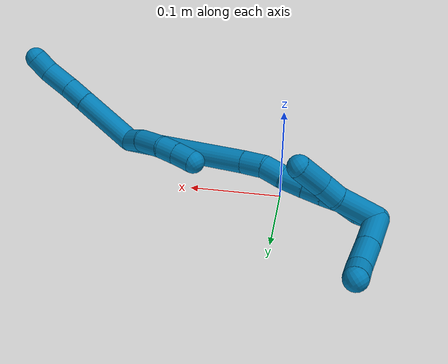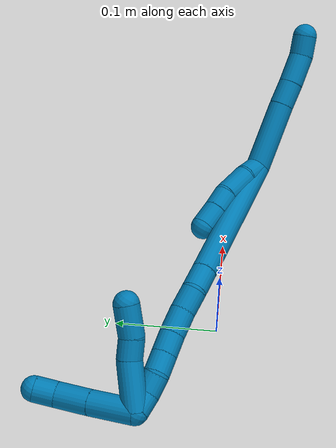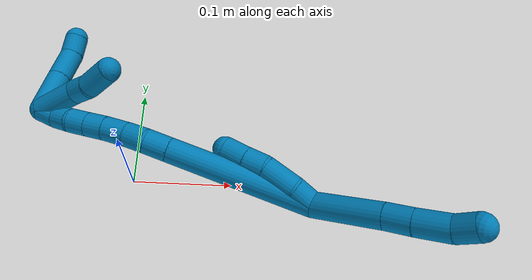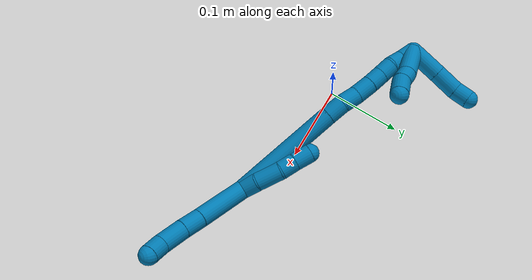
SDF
<sdf version="1.7">
 <world name="default">
  <model name="9">
   <static>0</static>
   <link name="9">
    <collision name="collision-cylinder-e_1_2_8">
     <pose>0.008823 0.005905 0.033867 -0.172625 0.251211 -0.021851</pose>
     <geometry><cylinder><radius>0.0125</radius><length>0.070984</length></cylinder></geometry>
     <surface>
      <friction><ode><mu>1.16</mu><mu2>1.16</mu2><slip1>0</slip1><slip2>0</slip2></ode></friction>
      <contact><ode><kp>1e+06</kp><kd>1</kd><max_vel>0</max_vel><min_depth>0.001</min_depth></ode></contact>
     </surface>
    </collision>
    <visual name="visual-cylinder-e_1_2_8">
     <pose>0.008823 0.005905 0.033867 -0.172625 0.251211 -0.021851</pose>
     <geometry><cylinder><radius>0.0125</radius><length>0.070984</length></cylinder></geometry>
     <material><ambient>0 0.490196 0.709804 1</ambient></material>
    </visual>
    <collision name="collision-cylinder-e_2_8_9">
     <pose>0.021086 0.013438 0.079826 -0.133795 0.274893 -0.018533</pose>
     <geometry><cylinder><radius>0.0125</radius><length>0.025354</length></cylinder></geometry>
     <surface>
      <friction><ode><mu>1.16</mu><mu2>1.16</mu2><slip1>0</slip1><slip2>0</slip2></ode></friction>
      <contact><ode><kp>1e+06</kp><kd>1</kd><max_vel>0</max_vel><min_depth>0.001</min_depth></ode></contact>
     </surface>
    </collision>
    <visual name="visual-cylinder-e_2_8_9">
     <pose>0.021086 0.013438 0.079826 -0.133795 0.274893 -0.018533</pose>
     <geometry><cylinder><radius>0.0125</radius><length>0.025354</length></cylinder></geometry>
     <material><ambient>0 0.490196 0.709804 1</ambient></material>
    </visual>
    <collision name="collision-cylinder-e_3_9_10">
     <pose>0.029179 0.017807 0.107046 -0.179275 0.293802 -0.026596</pose>
     <geometry><cylinder><radius>0.0125</radius><length>0.032124</length></cylinder></geometry>
     <surface>
      <friction><ode><mu>1.16</mu><mu2>1.16</mu2><slip1>0</slip1><slip2>0</slip2></ode></friction>
      <contact><ode><kp>1e+06</kp><kd>1</kd><max_vel>0</max_vel><min_depth>0.001</min_depth></ode></contact>
     </surface>
    </collision>
    <visual name="visual-cylinder-e_3_9_10">
     <pose>0.029179 0.017807 0.107046 -0.179275 0.293802 -0.026596</pose>
     <geometry><cylinder><radius>0.0125</radius><length>0.032124</length></cylinder></geometry>
     <material><ambient>0 0.490196 0.709804 1</ambient></material>
    </visual>
    <collision name="collision-cylinder-e_4_10_6">
     <pose>0.034095 0.024227 0.13229 -0.348792 0.024578 -0.004331</pose>
     <geometry><cylinder><radius>0.0125</radius><length>0.021538</length></cylinder></geometry>
     <surface>
      <friction><ode><mu>1.16</mu><mu2>1.16</mu2><slip1>0</slip1><slip2>0</slip2></ode></friction>
      <contact><ode><kp>1e+06</kp><kd>1</kd><max_vel>0</max_vel><min_depth>0.001</min_depth></ode></contact>
     </surface>
    </collision>
    <visual name="visual-cylinder-e_4_10_6">
     <pose>0.034095 0.024227 0.13229 -0.348792 0.024578 -0.004331</pose>
     <geometry><cylinder><radius>0.0125</radius><length>0.021538</length></cylinder></geometry>
     <material><ambient>0 0.490196 0.709804 1</ambient></material>
    </visual>
    <collision name="collision-cylinder-e_1_2_11">
     <pose>-0.009539 0.003045 -0.005954 -2.66885 -0.959312 2.27426</pose>
     <geometry><cylinder><radius>0.0125</radius><length>0.023299</length></cylinder></geometry>
     <surface>
      <friction><ode><mu>1.16</mu><mu2>1.16</mu2><slip1>0</slip1><slip2>0</slip2></ode></friction>
      <contact><ode><kp>1e+06</kp><kd>1</kd><max_vel>0</max_vel><min_depth>0.001</min_depth></ode></contact>
     </surface>
    </collision>
    <visual name="visual-cylinder-e_1_2_11">
     <pose>-0.009539 0.003045 -0.005954 -2.66885 -0.959312 2.27426</pose>
     <geometry><cylinder><radius>0.0125</radius><length>0.023299</length></cylinder></geometry>
     <material><ambient>0 0.490196 0.709804 1</ambient></material>
    </visual>
    <collision name="collision-cylinder-e_2_11_12">
     <pose>-0.030552 0.009525 -0.023054 -2.8427 -0.777281 2.43684</pose>
     <geometry><cylinder><radius>0.0125</radius><length>0.032722</length></cylinder></geometry>
     <surface>
      <friction><ode><mu>1.16</mu><mu2>1.16</mu2><slip1>0</slip1><slip2>0</slip2></ode></friction>
      <contact><ode><kp>1e+06</kp><kd>1</kd><max_vel>0</max_vel><min_depth>0.001</min_depth></ode></contact>
     </surface>
    </collision>
    <visual name="visual-cylinder-e_2_11_12">
     <pose>-0.030552 0.009525 -0.023054 -2.8427 -0.777281 2.43684</pose>
     <geometry><cylinder><radius>0.0125</radius><length>0.032722</length></cylinder></geometry>
     <material><ambient>0 0.490196 0.709804 1</ambient></material>
    </visual>
    <collision name="collision-cylinder-e_3_12_13">
     <pose>-0.048407 0.013308 -0.04258 -3.09999 -0.650308 3.01831</pose>
     <geometry><cylinder><radius>0.0125</radius><length>0.021078</length></cylinder></geometry>
     <surface>
      <friction><ode><mu>1.16</mu><mu2>1.16</mu2><slip1>0</slip1><slip2>0</slip2></ode></friction>
      <contact><ode><kp>1e+06</kp><kd>1</kd><max_vel>0</max_vel><min_depth>0.001</min_depth></ode></contact>
     </surface>
    </collision>
    <visual name="visual-cylinder-e_3_12_13">
     <pose>-0.048407 0.013308 -0.04258 -3.09999 -0.650308 3.01831</pose>
     <geometry><cylinder><radius>0.0125</radius><length>0.021078</length></cylinder></geometry>
     <material><ambient>0 0.490196 0.709804 1</ambient></material>
    </visual>
    <collision name="collision-cylinder-e_4_13_5">
     <pose>-0.06146 0.014567 -0.060222 -3.04355 -0.622062 2.83869</pose>
     <geometry><cylinder><radius>0.0125</radius><length>0.022901</length></cylinder></geometry>
     <surface>
      <friction><ode><mu>1.16</mu><mu2>1.16</mu2><slip1>0</slip1><slip2>0</slip2></ode></friction>
      <contact><ode><kp>1e+06</kp><kd>1</kd><max_vel>0</max_vel><min_depth>0.001</min_depth></ode></contact>
     </surface>
    </collision>
    <visual name="visual-cylinder-e_4_13_5">
     <pose>-0.06146 0.014567 -0.060222 -3.04355 -0.622062 2.83869</pose>
     <geometry><cylinder><radius>0.0125</radius><length>0.022901</length></cylinder></geometry>
     <material><ambient>0 0.490196 0.709804 1</ambient></material>
    </visual>
    <collision name="collision-cylinder-e_1_2_14">
     <pose>-0.053805 -0.004264 -0.049438 3.05556 -0.825822 -2.94571</pose>
     <geometry><cylinder><radius>0.0125</radius><length>0.146387</length></cylinder></geometry>
     <surface>
      <friction><ode><mu>1.16</mu><mu2>1.16</mu2><slip1>0</slip1><slip2>0</slip2></ode></friction>
      <contact><ode><kp>1e+06</kp><kd>1</kd><max_vel>0</max_vel><min_depth>0.001</min_depth></ode></contact>
     </surface>
    </collision>
    <visual name="visual-cylinder-e_1_2_14">
     <pose>-0.053805 -0.004264 -0.049438 3.05556 -0.825822 -2.94571</pose>
     <geometry><cylinder><radius>0.0125</radius><length>0.146387</length></cylinder></geometry>
     <material><ambient>0 0.490196 0.709804 1</ambient></material>
    </visual>
    <collision name="collision-cylinder-e_2_14_15">
     <pose>-0.116219 -0.009156 -0.107301 3.06722 -0.794838 -2.96479</pose>
     <geometry><cylinder><radius>0.0125</radius><length>0.024125</length></cylinder></geometry>
     <surface>
      <friction><ode><mu>1.16</mu><mu2>1.16</mu2><slip1>0</slip1><slip2>0</slip2></ode></friction>
      <contact><ode><kp>1e+06</kp><kd>1</kd><max_vel>0</max_vel><min_depth>0.001</min_depth></ode></contact>
     </surface>
    </collision>
    <visual name="visual-cylinder-e_2_14_15">
     <pose>-0.116219 -0.009156 -0.107301 3.06722 -0.794838 -2.96479</pose>
     <geometry><cylinder><radius>0.0125</radius><length>0.024125</length></cylinder></geometry>
     <material><ambient>0 0.490196 0.709804 1</ambient></material>
    </visual>
    <collision name="collision-cylinder-e_3_15_16">
     <pose>-0.130485 -0.010244 -0.125815 3.09599 -0.510541 -2.96726</pose>
     <geometry><cylinder><radius>0.0125</radius><length>0.023148</length></cylinder></geometry>
     <surface>
      <friction><ode><mu>1.16</mu><mu2>1.16</mu2><slip1>0</slip1><slip2>0</slip2></ode></friction>
      <contact><ode><kp>1e+06</kp><kd>1</kd><max_vel>0</max_vel><min_depth>0.001</min_depth></ode></contact>
     </surface>
    </collision>
    <visual name="visual-cylinder-e_3_15_16">
     <pose>-0.130485 -0.010244 -0.125815 3.09599 -0.510541 -2.96726</pose>
     <geometry><cylinder><radius>0.0125</radius><length>0.023148</length></cylinder></geometry>
     <material><ambient>0 0.490196 0.709804 1</ambient></material>
    </visual>
    <collision name="collision-cylinder-e_4_16_17">
     <pose>-0.14315 -0.012033 -0.146237 3.01376 -0.592177 -2.72799</pose>
     <geometry><cylinder><radius>0.0125</radius><length>0.025116</length></cylinder></geometry>
     <surface>
      <friction><ode><mu>1.16</mu><mu2>1.16</mu2><slip1>0</slip1><slip2>0</slip2></ode></friction>
      <contact><ode><kp>1e+06</kp><kd>1</kd><max_vel>0</max_vel><min_depth>0.001</min_depth></ode></contact>
     </surface>
    </collision>
    <visual name="visual-cylinder-e_4_16_17">
     <pose>-0.14315 -0.012033 -0.146237 3.01376 -0.592177 -2.72799</pose>
     <geometry><cylinder><radius>0.0125</radius><length>0.025116</length></cylinder></geometry>
     <material><ambient>0 0.490196 0.709804 1</ambient></material>
    </visual>
    <collision name="collision-cylinder-e_5_17_18">
     <pose>-0.155967 -0.014992 -0.165023 2.95095 -0.593568 -2.53555</pose>
     <geometry><cylinder><radius>0.0125</radius><length>0.020767</length></cylinder></geometry>
     <surface>
      <friction><ode><mu>1.16</mu><mu2>1.16</mu2><slip1>0</slip1><slip2>0</slip2></ode></friction>
      <contact><ode><kp>1e+06</kp><kd>1</kd><max_vel>0</max_vel><min_depth>0.001</min_depth></ode></contact>
     </surface>
    </collision>
    <visual name="visual-cylinder-e_5_17_18">
     <pose>-0.155967 -0.014992 -0.165023 2.95095 -0.593568 -2.53555</pose>
     <geometry><cylinder><radius>0.0125</radius><length>0.020767</length></cylinder></geometry>
     <material><ambient>0 0.490196 0.709804 1</ambient></material>
    </visual>
    <collision name="collision-cylinder-e_6_18_19">
     <pose>-0.167813 -0.018195 -0.181406 2.94588 -0.64144 -2.56691</pose>
     <geometry><cylinder><radius>0.0125</radius><length>0.020182</length></cylinder></geometry>
     <surface>
      <friction><ode><mu>1.16</mu><mu2>1.16</mu2><slip1>0</slip1><slip2>0</slip2></ode></friction>
      <contact><ode><kp>1e+06</kp><kd>1</kd><max_vel>0</max_vel><min_depth>0.001</min_depth></ode></contact>
     </surface>
    </collision>
    <visual name="visual-cylinder-e_6_18_19">
     <pose>-0.167813 -0.018195 -0.181406 2.94588 -0.64144 -2.56691</pose>
     <geometry><cylinder><radius>0.0125</radius><length>0.020182</length></cylinder></geometry>
     <material><ambient>0 0.490196 0.709804 1</ambient></material>
    </visual>
    <collision name="collision-cylinder-e_7_19_20">
     <pose>-0.177771 -0.020465 -0.198646 3.06678 -0.397546 -2.7742</pose>
     <geometry><cylinder><radius>0.0125</radius><length>0.02025</length></cylinder></geometry>
     <surface>
      <friction><ode><mu>1.16</mu><mu2>1.16</mu2><slip1>0</slip1><slip2>0</slip2></ode></friction>
      <contact><ode><kp>1e+06</kp><kd>1</kd><max_vel>0</max_vel><min_depth>0.001</min_depth></ode></contact>
     </surface>
    </collision>
    <visual name="visual-cylinder-e_7_19_20">
     <pose>-0.177771 -0.020465 -0.198646 3.06678 -0.397546 -2.7742</pose>
     <geometry><cylinder><radius>0.0125</radius><length>0.02025</length></cylinder></geometry>
     <material><ambient>0 0.490196 0.709804 1</ambient></material>
    </visual>
    <collision name="collision-cylinder-e_8_20_1">
     <pose>-0.188243 -0.020978 -0.215524 -3.11709 -0.713396 3.07585</pose>
     <geometry><cylinder><radius>0.0125</radius><length>0.020025</length></cylinder></geometry>
     <surface>
      <friction><ode><mu>1.16</mu><mu2>1.16</mu2><slip1>0</slip1><slip2>0</slip2></ode></friction>
      <contact><ode><kp>1e+06</kp><kd>1</kd><max_vel>0</max_vel><min_depth>0.001</min_depth></ode></contact>
     </surface>
    </collision>
    <visual name="visual-cylinder-e_8_20_1">
     <pose>-0.188243 -0.020978 -0.215524 -3.11709 -0.713396 3.07585</pose>
     <geometry><cylinder><radius>0.0125</radius><length>0.020025</length></cylinder></geometry>
     <material><ambient>0 0.490196 0.709804 1</ambient></material>
    </visual>
    <collision name="collision-cylinder-e_1_1_21">
     <pose>-0.191894 -0.000676 -0.231897 -1.9834 0.131328 -0.200459</pose>
     <geometry><cylinder><radius>0.0125</radius><length>0.044299</length></cylinder></geometry>
     <surface>
      <friction><ode><mu>1.16</mu><mu2>1.16</mu2><slip1>0</slip1><slip2>0</slip2></ode></friction>
      <contact><ode><kp>1e+06</kp><kd>1</kd><max_vel>0</max_vel><min_depth>0.001</min_depth></ode></contact>
     </surface>
    </collision>
    <visual name="visual-cylinder-e_1_1_21">
     <pose>-0.191894 -0.000676 -0.231897 -1.9834 0.131328 -0.200459</pose>
     <geometry><cylinder><radius>0.0125</radius><length>0.044299</length></cylinder></geometry>
     <material><ambient>0 0.490196 0.709804 1</ambient></material>
    </visual>
    <collision name="collision-cylinder-e_2_21_22">
     <pose>-0.186783 0.035016 -0.246966 -1.95312 0.130974 -0.193503</pose>
     <geometry><cylinder><radius>0.0125</radius><length>0.033866</length></cylinder></geometry>
     <surface>
      <friction><ode><mu>1.16</mu><mu2>1.16</mu2><slip1>0</slip1><slip2>0</slip2></ode></friction>
      <contact><ode><kp>1e+06</kp><kd>1</kd><max_vel>0</max_vel><min_depth>0.001</min_depth></ode></contact>
     </surface>
    </collision>
    <visual name="visual-cylinder-e_2_21_22">
     <pose>-0.186783 0.035016 -0.246966 -1.95312 0.130974 -0.193503</pose>
     <geometry><cylinder><radius>0.0125</radius><length>0.033866</length></cylinder></geometry>
     <material><ambient>0 0.490196 0.709804 1</ambient></material>
    </visual>
    <collision name="collision-cylinder-e_3_22_4">
     <pose>-0.185749 0.06104 -0.256168 -1.84496 -0.108092 0.142584</pose>
     <geometry><cylinder><radius>0.0125</radius><length>0.021835</length></cylinder></geometry>
     <surface>
      <friction><ode><mu>1.16</mu><mu2>1.16</mu2><slip1>0</slip1><slip2>0</slip2></ode></friction>
      <contact><ode><kp>1e+06</kp><kd>1</kd><max_vel>0</max_vel><min_depth>0.001</min_depth></ode></contact>
     </surface>
    </collision>
    <visual name="visual-cylinder-e_3_22_4">
     <pose>-0.185749 0.06104 -0.256168 -1.84496 -0.108092 0.142584</pose>
     <geometry><cylinder><radius>0.0125</radius><length>0.021835</length></cylinder></geometry>
     <material><ambient>0 0.490196 0.709804 1</ambient></material>
    </visual>
    <collision name="collision-cylinder-e_1_1_23">
     <pose>-0.189817 -0.006381 -0.204851 -0.668642 0.210958 -0.073518</pose>
     <geometry><cylinder><radius>0.0125</radius><length>0.047548</length></cylinder></geometry>
     <surface>
      <friction><ode><mu>1.16</mu><mu2>1.16</mu2><slip1>0</slip1><slip2>0</slip2></ode></friction>
      <contact><ode><kp>1e+06</kp><kd>1</kd><max_vel>0</max_vel><min_depth>0.001</min_depth></ode></contact>
     </surface>
    </collision>
    <visual name="visual-cylinder-e_1_1_23">
     <pose>-0.189817 -0.006381 -0.204851 -0.668642 0.210958 -0.073518</pose>
     <geometry><cylinder><radius>0.0125</radius><length>0.047548</length></cylinder></geometry>
     <material><ambient>0 0.490196 0.709804 1</ambient></material>
    </visual>
    <collision name="collision-cylinder-e_2_23_24">
     <pose>-0.183618 0.012327 -0.177127 -0.425451 0.116674 -0.025228</pose>
     <geometry><cylinder><radius>0.0125</radius><length>0.020963</length></cylinder></geometry>
     <surface>
      <friction><ode><mu>1.16</mu><mu2>1.16</mu2><slip1>0</slip1><slip2>0</slip2></ode></friction>
      <contact><ode><kp>1e+06</kp><kd>1</kd><max_vel>0</max_vel><min_depth>0.001</min_depth></ode></contact>
     </surface>
    </collision>
    <visual name="visual-cylinder-e_2_23_24">
     <pose>-0.183618 0.012327 -0.177127 -0.425451 0.116674 -0.025228</pose>
     <geometry><cylinder><radius>0.0125</radius><length>0.020963</length></cylinder></geometry>
     <material><ambient>0 0.490196 0.709804 1</ambient></material>
    </visual>
    <collision name="collision-cylinder-e_3_24_3">
     <pose>-0.182252 0.026411 -0.155313 -0.670811 0.009272 -0.003232</pose>
     <geometry><cylinder><radius>0.0125</radius><length>0.031488</length></cylinder></geometry>
     <surface>
      <friction><ode><mu>1.16</mu><mu2>1.16</mu2><slip1>0</slip1><slip2>0</slip2></ode></friction>
      <contact><ode><kp>1e+06</kp><kd>1</kd><max_vel>0</max_vel><min_depth>0.001</min_depth></ode></contact>
     </surface>
    </collision>
    <visual name="visual-cylinder-e_3_24_3">
     <pose>-0.182252 0.026411 -0.155313 -0.670811 0.009272 -0.003232</pose>
     <geometry><cylinder><radius>0.0125</radius><length>0.031488</length></cylinder></geometry>
     <material><ambient>0 0.490196 0.709804 1</ambient></material>
    </visual>
    <collision name="collision-sphere-3">
     <pose>-0.182106 0.036197 -0.142981 0 -0 0</pose>
     <geometry><sphere><radius>0.0125</radius></sphere></geometry>
     <surface>
      <friction><ode><mu>1.16</mu><mu2>1.16</mu2><slip1>0</slip1><slip2>0</slip2></ode></friction>
      <contact><ode><kp>1e+06</kp><kd>1</kd><max_vel>0</max_vel><min_depth>0.001</min_depth></ode></contact>
     </surface>
    </collision>
    <visual name="visual-sphere-3">
     <pose>-0.182106 0.036197 -0.142981 0 -0 0</pose>
     <geometry><sphere><radius>0.0125</radius></sphere></geometry>
     <material><ambient>0 0.490196 0.709804 1</ambient></material>
    </visual>
    <collision name="collision-sphere-24">
     <pose>-0.182398 0.016624 -0.167645 0 -0 0</pose>
     <geometry><sphere><radius>0.0125</radius></sphere></geometry>
     <surface>
      <friction><ode><mu>1.16</mu><mu2>1.16</mu2><slip1>0</slip1><slip2>0</slip2></ode></friction>
      <contact><ode><kp>1e+06</kp><kd>1</kd><max_vel>0</max_vel><min_depth>0.001</min_depth></ode></contact>
     </surface>
    </collision>
    <visual name="visual-sphere-24">
     <pose>-0.182398 0.016624 -0.167645 0 -0 0</pose>
     <geometry><sphere><radius>0.0125</radius></sphere></geometry>
     <material><ambient>0 0.490196 0.709804 1</ambient></material>
    </visual>
    <collision name="collision-sphere-23">
     <pose>-0.184839 0.008031 -0.18661 0 -0 0</pose>
     <geometry><sphere><radius>0.0125</radius></sphere></geometry>
     <surface>
      <friction><ode><mu>1.16</mu><mu2>1.16</mu2><slip1>0</slip1><slip2>0</slip2></ode></friction>
      <contact><ode><kp>1e+06</kp><kd>1</kd><max_vel>0</max_vel><min_depth>0.001</min_depth></ode></contact>
     </surface>
    </collision>
    <visual name="visual-sphere-23">
     <pose>-0.184839 0.008031 -0.18661 0 -0 0</pose>
     <geometry><sphere><radius>0.0125</radius></sphere></geometry>
     <material><ambient>0 0.490196 0.709804 1</ambient></material>
    </visual>
    <collision name="collision-sphere-4">
     <pose>-0.186927 0.071489 -0.259106 0 -0 0</pose>
     <geometry><sphere><radius>0.0125</radius></sphere></geometry>
     <surface>
      <friction><ode><mu>1.16</mu><mu2>1.16</mu2><slip1>0</slip1><slip2>0</slip2></ode></friction>
      <contact><ode><kp>1e+06</kp><kd>1</kd><max_vel>0</max_vel><min_depth>0.001</min_depth></ode></contact>
     </surface>
    </collision>
    <visual name="visual-sphere-4">
     <pose>-0.186927 0.071489 -0.259106 0 -0 0</pose>
     <geometry><sphere><radius>0.0125</radius></sphere></geometry>
     <material><ambient>0 0.490196 0.709804 1</ambient></material>
    </visual>
    <collision name="collision-sphere-22">
     <pose>-0.184571 0.050592 -0.253229 0 -0 0</pose>
     <geometry><sphere><radius>0.0125</radius></sphere></geometry>
     <surface>
      <friction><ode><mu>1.16</mu><mu2>1.16</mu2><slip1>0</slip1><slip2>0</slip2></ode></friction>
      <contact><ode><kp>1e+06</kp><kd>1</kd><max_vel>0</max_vel><min_depth>0.001</min_depth></ode></contact>
     </surface>
    </collision>
    <visual name="visual-sphere-22">
     <pose>-0.184571 0.050592 -0.253229 0 -0 0</pose>
     <geometry><sphere><radius>0.0125</radius></sphere></geometry>
     <material><ambient>0 0.490196 0.709804 1</ambient></material>
    </visual>
    <collision name="collision-sphere-21">
     <pose>-0.188994 0.01944 -0.240702 0 -0 0</pose>
     <geometry><sphere><radius>0.0125</radius></sphere></geometry>
     <surface>
      <friction><ode><mu>1.16</mu><mu2>1.16</mu2><slip1>0</slip1><slip2>0</slip2></ode></friction>
      <contact><ode><kp>1e+06</kp><kd>1</kd><max_vel>0</max_vel><min_depth>0.001</min_depth></ode></contact>
     </surface>
    </collision>
    <visual name="visual-sphere-21">
     <pose>-0.188994 0.01944 -0.240702 0 -0 0</pose>
     <geometry><sphere><radius>0.0125</radius></sphere></geometry>
     <material><ambient>0 0.490196 0.709804 1</ambient></material>
    </visual>
    <collision name="collision-sphere-1">
     <pose>-0.194795 -0.020792 -0.223092 0 -0 0</pose>
     <geometry><sphere><radius>0.0125</radius></sphere></geometry>
     <surface>
      <friction><ode><mu>1.16</mu><mu2>1.16</mu2><slip1>0</slip1><slip2>0</slip2></ode></friction>
      <contact><ode><kp>1e+06</kp><kd>1</kd><max_vel>0</max_vel><min_depth>0.001</min_depth></ode></contact>
     </surface>
    </collision>
    <visual name="visual-sphere-1">
     <pose>-0.194795 -0.020792 -0.223092 0 -0 0</pose>
     <geometry><sphere><radius>0.0125</radius></sphere></geometry>
     <material><ambient>0 0.490196 0.709804 1</ambient></material>
    </visual>
    <collision name="collision-sphere-11">
     <pose>-0.019077 0.00609 -0.011909 0 -0 0</pose>
     <geometry><sphere><radius>0.0125</radius></sphere></geometry>
     <surface>
      <friction><ode><mu>1.16</mu><mu2>1.16</mu2><slip1>0</slip1><slip2>0</slip2></ode></friction>
      <contact><ode><kp>1e+06</kp><kd>1</kd><max_vel>0</max_vel><min_depth>0.001</min_depth></ode></contact>
     </surface>
    </collision>
    <visual name="visual-sphere-11">
     <pose>-0.019077 0.00609 -0.011909 0 -0 0</pose>
     <geometry><sphere><radius>0.0125</radius></sphere></geometry>
     <material><ambient>0 0.490196 0.709804 1</ambient></material>
    </visual>
    <collision name="collision-sphere-6">
     <pose>0.034359 0.027907 0.142408 0 -0 0</pose>
     <geometry><sphere><radius>0.0125</radius></sphere></geometry>
     <surface>
      <friction><ode><mu>1.16</mu><mu2>1.16</mu2><slip1>0</slip1><slip2>0</slip2></ode></friction>
      <contact><ode><kp>1e+06</kp><kd>1</kd><max_vel>0</max_vel><min_depth>0.001</min_depth></ode></contact>
     </surface>
    </collision>
    <visual name="visual-sphere-6">
     <pose>0.034359 0.027907 0.142408 0 -0 0</pose>
     <geometry><sphere><radius>0.0125</radius></sphere></geometry>
     <material><ambient>0 0.490196 0.709804 1</ambient></material>
    </visual>
    <collision name="collision-sphere-10">
     <pose>0.03383 0.020548 0.122173 0 -0 0</pose>
     <geometry><sphere><radius>0.0125</radius></sphere></geometry>
     <surface>
      <friction><ode><mu>1.16</mu><mu2>1.16</mu2><slip1>0</slip1><slip2>0</slip2></ode></friction>
      <contact><ode><kp>1e+06</kp><kd>1</kd><max_vel>0</max_vel><min_depth>0.001</min_depth></ode></contact>
     </surface>
    </collision>
    <visual name="visual-sphere-10">
     <pose>0.03383 0.020548 0.122173 0 -0 0</pose>
     <geometry><sphere><radius>0.0125</radius></sphere></geometry>
     <material><ambient>0 0.490196 0.709804 1</ambient></material>
    </visual>
    <collision name="collision-sphere-9">
     <pose>0.024527 0.015065 0.091918 0 -0 0</pose>
     <geometry><sphere><radius>0.0125</radius></sphere></geometry>
     <surface>
      <friction><ode><mu>1.16</mu><mu2>1.16</mu2><slip1>0</slip1><slip2>0</slip2></ode></friction>
      <contact><ode><kp>1e+06</kp><kd>1</kd><max_vel>0</max_vel><min_depth>0.001</min_depth></ode></contact>
     </surface>
    </collision>
    <visual name="visual-sphere-9">
     <pose>0.024527 0.015065 0.091918 0 -0 0</pose>
     <geometry><sphere><radius>0.0125</radius></sphere></geometry>
     <material><ambient>0 0.490196 0.709804 1</ambient></material>
    </visual>
    <collision name="collision-sphere-2">
     <geometry><sphere><radius>0.0125</radius></sphere></geometry>
     <surface>
      <friction><ode><mu>1.16</mu><mu2>1.16</mu2><slip1>0</slip1><slip2>0</slip2></ode></friction>
      <contact><ode><kp>1e+06</kp><kd>1</kd><max_vel>0</max_vel><min_depth>0.001</min_depth></ode></contact>
     </surface>
    </collision>
    <visual name="visual-sphere-2">
     <geometry><sphere><radius>0.0125</radius></sphere></geometry>
     <material><ambient>0 0.490196 0.709804 1</ambient></material>
    </visual>
    <collision name="collision-sphere-19">
     <pose>-0.173851 -0.019768 -0.189336 0 -0 0</pose>
     <geometry><sphere><radius>0.0125</radius></sphere></geometry>
     <surface>
      <friction><ode><mu>1.16</mu><mu2>1.16</mu2><slip1>0</slip1><slip2>0</slip2></ode></friction>
      <contact><ode><kp>1e+06</kp><kd>1</kd><max_vel>0</max_vel><min_depth>0.001</min_depth></ode></contact>
     </surface>
    </collision>
    <visual name="visual-sphere-19">
     <pose>-0.173851 -0.019768 -0.189336 0 -0 0</pose>
     <geometry><sphere><radius>0.0125</radius></sphere></geometry>
     <material><ambient>0 0.490196 0.709804 1</ambient></material>
    </visual>
    <collision name="collision-sphere-8">
     <pose>0.017645 0.01181 0.067735 0 -0 0</pose>
     <geometry><sphere><radius>0.0125</radius></sphere></geometry>
     <surface>
      <friction><ode><mu>1.16</mu><mu2>1.16</mu2><slip1>0</slip1><slip2>0</slip2></ode></friction>
      <contact><ode><kp>1e+06</kp><kd>1</kd><max_vel>0</max_vel><min_depth>0.001</min_depth></ode></contact>
     </surface>
    </collision>
    <visual name="visual-sphere-8">
     <pose>0.017645 0.01181 0.067735 0 -0 0</pose>
     <geometry><sphere><radius>0.0125</radius></sphere></geometry>
     <material><ambient>0 0.490196 0.709804 1</ambient></material>
    </visual>
    <collision name="collision-sphere-12">
     <pose>-0.042027 0.012959 -0.034199 0 -0 0</pose>
     <geometry><sphere><radius>0.0125</radius></sphere></geometry>
     <surface>
      <friction><ode><mu>1.16</mu><mu2>1.16</mu2><slip1>0</slip1><slip2>0</slip2></ode></friction>
      <contact><ode><kp>1e+06</kp><kd>1</kd><max_vel>0</max_vel><min_depth>0.001</min_depth></ode></contact>
     </surface>
    </collision>
    <visual name="visual-sphere-12">
     <pose>-0.042027 0.012959 -0.034199 0 -0 0</pose>
     <geometry><sphere><radius>0.0125</radius></sphere></geometry>
     <material><ambient>0 0.490196 0.709804 1</ambient></material>
    </visual>
    <collision name="collision-sphere-13">
     <pose>-0.054788 0.013657 -0.050961 0 -0 0</pose>
     <geometry><sphere><radius>0.0125</radius></sphere></geometry>
     <surface>
      <friction><ode><mu>1.16</mu><mu2>1.16</mu2><slip1>0</slip1><slip2>0</slip2></ode></friction>
      <contact><ode><kp>1e+06</kp><kd>1</kd><max_vel>0</max_vel><min_depth>0.001</min_depth></ode></contact>
     </surface>
    </collision>
    <visual name="visual-sphere-13">
     <pose>-0.054788 0.013657 -0.050961 0 -0 0</pose>
     <geometry><sphere><radius>0.0125</radius></sphere></geometry>
     <material><ambient>0 0.490196 0.709804 1</ambient></material>
    </visual>
    <collision name="collision-sphere-5">
     <pose>-0.068133 0.015478 -0.069483 0 -0 0</pose>
     <geometry><sphere><radius>0.0125</radius></sphere></geometry>
     <surface>
      <friction><ode><mu>1.16</mu><mu2>1.16</mu2><slip1>0</slip1><slip2>0</slip2></ode></friction>
      <contact><ode><kp>1e+06</kp><kd>1</kd><max_vel>0</max_vel><min_depth>0.001</min_depth></ode></contact>
     </surface>
    </collision>
    <visual name="visual-sphere-5">
     <pose>-0.068133 0.015478 -0.069483 0 -0 0</pose>
     <geometry><sphere><radius>0.0125</radius></sphere></geometry>
     <material><ambient>0 0.490196 0.709804 1</ambient></material>
    </visual>
    <collision name="collision-sphere-14">
     <pose>-0.10761 -0.008528 -0.098876 0 -0 0</pose>
     <geometry><sphere><radius>0.0125</radius></sphere></geometry>
     <surface>
      <friction><ode><mu>1.16</mu><mu2>1.16</mu2><slip1>0</slip1><slip2>0</slip2></ode></friction>
      <contact><ode><kp>1e+06</kp><kd>1</kd><max_vel>0</max_vel><min_depth>0.001</min_depth></ode></contact>
     </surface>
    </collision>
    <visual name="visual-sphere-14">
     <pose>-0.10761 -0.008528 -0.098876 0 -0 0</pose>
     <geometry><sphere><radius>0.0125</radius></sphere></geometry>
     <material><ambient>0 0.490196 0.709804 1</ambient></material>
    </visual>
    <collision name="collision-sphere-15">
     <pose>-0.124829 -0.009784 -0.115727 0 -0 0</pose>
     <geometry><sphere><radius>0.0125</radius></sphere></geometry>
     <surface>
      <friction><ode><mu>1.16</mu><mu2>1.16</mu2><slip1>0</slip1><slip2>0</slip2></ode></friction>
      <contact><ode><kp>1e+06</kp><kd>1</kd><max_vel>0</max_vel><min_depth>0.001</min_depth></ode></contact>
     </surface>
    </collision>
    <visual name="visual-sphere-15">
     <pose>-0.124829 -0.009784 -0.115727 0 -0 0</pose>
     <geometry><sphere><radius>0.0125</radius></sphere></geometry>
     <material><ambient>0 0.490196 0.709804 1</ambient></material>
    </visual>
    <collision name="collision-sphere-16">
     <pose>-0.136141 -0.010704 -0.135902 0 -0 0</pose>
     <geometry><sphere><radius>0.0125</radius></sphere></geometry>
     <surface>
      <friction><ode><mu>1.16</mu><mu2>1.16</mu2><slip1>0</slip1><slip2>0</slip2></ode></friction>
      <contact><ode><kp>1e+06</kp><kd>1</kd><max_vel>0</max_vel><min_depth>0.001</min_depth></ode></contact>
     </surface>
    </collision>
    <visual name="visual-sphere-16">
     <pose>-0.136141 -0.010704 -0.135902 0 -0 0</pose>
     <geometry><sphere><radius>0.0125</radius></sphere></geometry>
     <material><ambient>0 0.490196 0.709804 1</ambient></material>
    </visual>
    <collision name="collision-sphere-17">
     <pose>-0.15016 -0.013361 -0.156572 0 -0 0</pose>
     <geometry><sphere><radius>0.0125</radius></sphere></geometry>
     <surface>
      <friction><ode><mu>1.16</mu><mu2>1.16</mu2><slip1>0</slip1><slip2>0</slip2></ode></friction>
      <contact><ode><kp>1e+06</kp><kd>1</kd><max_vel>0</max_vel><min_depth>0.001</min_depth></ode></contact>
     </surface>
    </collision>
    <visual name="visual-sphere-17">
     <pose>-0.15016 -0.013361 -0.156572 0 -0 0</pose>
     <geometry><sphere><radius>0.0125</radius></sphere></geometry>
     <material><ambient>0 0.490196 0.709804 1</ambient></material>
    </visual>
    <collision name="collision-sphere-18">
     <pose>-0.161775 -0.016623 -0.173475 0 -0 0</pose>
     <geometry><sphere><radius>0.0125</radius></sphere></geometry>
     <surface>
      <friction><ode><mu>1.16</mu><mu2>1.16</mu2><slip1>0</slip1><slip2>0</slip2></ode></friction>
      <contact><ode><kp>1e+06</kp><kd>1</kd><max_vel>0</max_vel><min_depth>0.001</min_depth></ode></contact>
     </surface>
    </collision>
    <visual name="visual-sphere-18">
     <pose>-0.161775 -0.016623 -0.173475 0 -0 0</pose>
     <geometry><sphere><radius>0.0125</radius></sphere></geometry>
     <material><ambient>0 0.490196 0.709804 1</ambient></material>
    </visual>
    <collision name="collision-sphere-20">
     <pose>-0.181691 -0.021163 -0.207955 0 -0 0</pose>
     <geometry><sphere><radius>0.0125</radius></sphere></geometry>
     <surface>
      <friction><ode><mu>1.16</mu><mu2>1.16</mu2><slip1>0</slip1><slip2>0</slip2></ode></friction>
      <contact><ode><kp>1e+06</kp><kd>1</kd><max_vel>0</max_vel><min_depth>0.001</min_depth></ode></contact>
     </surface>
    </collision>
    <visual name="visual-sphere-20">
     <pose>-0.181691 -0.021163 -0.207955 0 -0 0</pose>
     <geometry><sphere><radius>0.0125</radius></sphere></geometry>
     <material><ambient>0 0.490196 0.709804 1</ambient></material>
    </visual>
    <inertial>
     <pose>-0.092805 0.004304 -0.089154 0 -0 0</pose>
     <mass>0.75</mass>
     <inertia>
      <ixx>-0.000178</ixx>
      <ixy>0</ixy>
      <ixz>0</ixz>
      <iyy>0.000307</iyy>
      <iyz>0</iyz>
      <izz>0.000172</izz>
     </inertia>
    </inertial>
   </link>
   <pose>0.177523 -0.029972 0.038147 0.341963 0.787314 -0.149656</pose>
  </model>
 </world>
</sdf>
